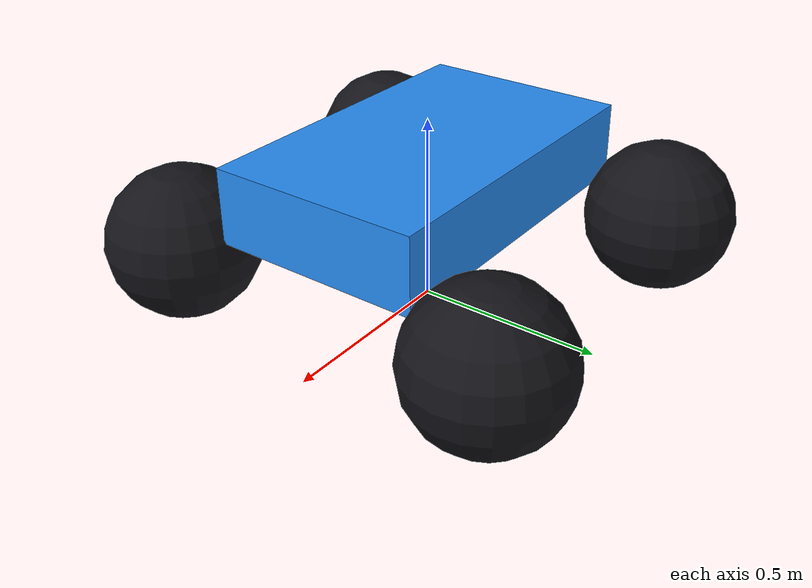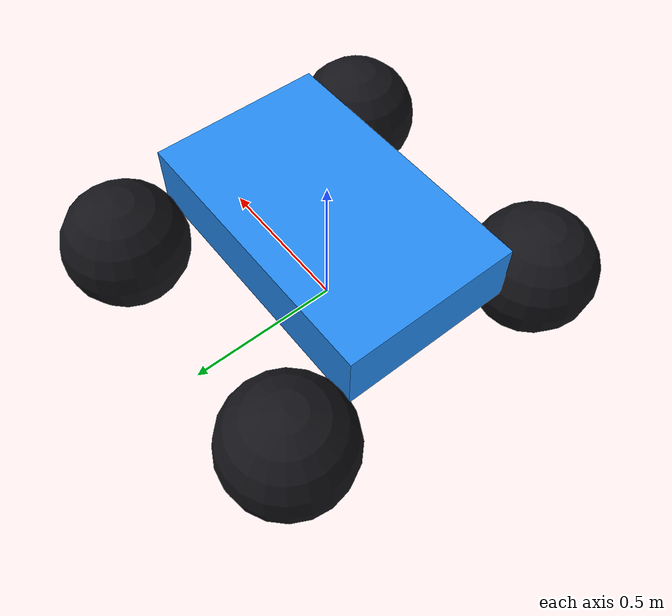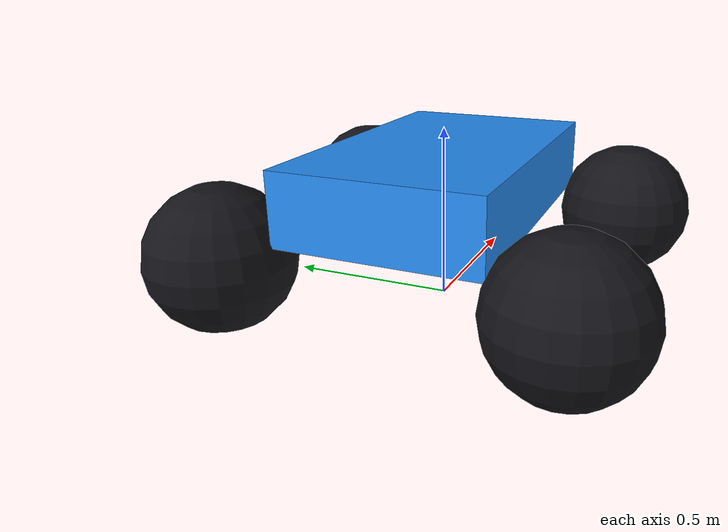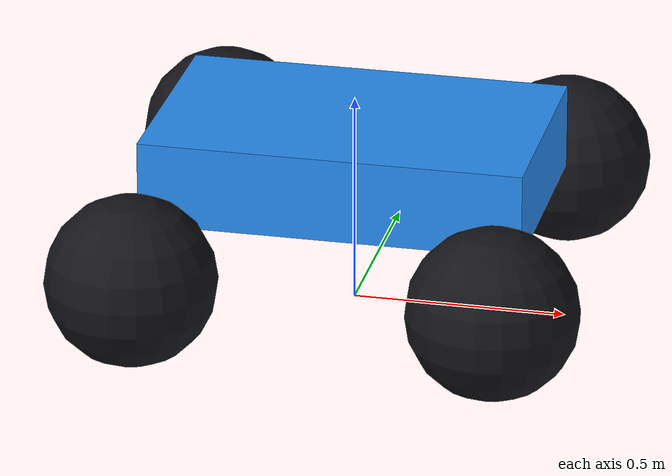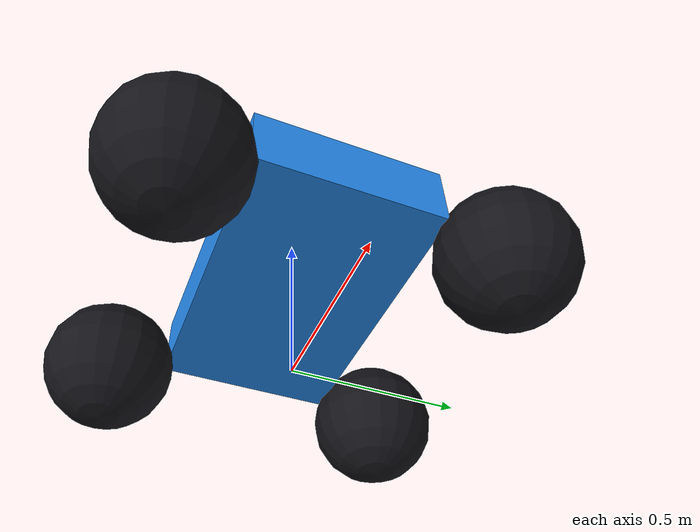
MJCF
<mujoco model="diffbot_race_v3">
  <!--
    Race chassis v3 (demo_race only): freejoint + contact wheels + Ackermann.
    Q/E → front steer angle; W/S → rear-wheel drive torque.
    Godot Car Kit remains viewer-only.
  -->
  <option timestep="0.002" integrator="implicitfast" gravity="0 0 -9.81"
          cone="elliptic" impratio="3"/>

  <default>
    <geom contype="1" conaffinity="1" friction="1.5 0.01 0.001"
          condim="3" solref="0.004 1" solimp="0.9 0.95 0.001"/>
    <joint damping="0.05" armature="0.02"/>
    <default class="wheel">
      <geom type="sphere" size="0.2" friction="1.5 0.01 0.001"
            condim="3" rgba="0.08 0.08 0.1 1"/>
      <joint type="hinge" axis="0 1 0" damping="0.08" armature="0.02"/>
    </default>
    <default class="susp">
      <joint type="slide" axis="0 0 1" range="-0.035 0.015"
             stiffness="12000" damping="200" armature="0.001"/>
    </default>
    <default class="steer">
      <joint type="hinge" axis="0 0 1" range="-0.55 0.55"
             damping="1.5" armature="0.01" limited="true"/>
    </default>
  </default>

  <worldbody>
    <body name="chassis" pos="0 0 0.2">
      <freejoint name="root"/>
      <inertial pos="-0.08 0 0.04" mass="32" diaginertia="0.6 1.2 1.3"/>
      <geom name="chassis_box" type="box" size="0.45 0.28 0.1" pos="0 0 0.16"
            contype="0" conaffinity="0"
            rgba="0.15 0.55 0.95 1"/>

      <!-- Front: susp → steer (yaw) → wheel roll -->
      <body name="susp_fl" pos="0.42 0.46 0">
        <inertial pos="0 0 0" mass="0.35" diaginertia="0.001 0.001 0.001"/>
        <joint name="susp_fl" class="susp"/>
        <body name="knuckle_fl" pos="0 0 0">
          <inertial pos="0 0 0" mass="0.25" diaginertia="0.001 0.001 0.001"/>
          <joint name="steer_fl" class="steer"/>
          <body name="wheel_fl" pos="0 0 0">
            <joint name="wheel_fl" class="wheel"/>
            <geom name="wheel_fl_geom" class="wheel" mass="1.1"/>
          </body>
        </body>
      </body>
      <body name="susp_fr" pos="0.42 -0.46 0">
        <inertial pos="0 0 0" mass="0.35" diaginertia="0.001 0.001 0.001"/>
        <joint name="susp_fr" class="susp"/>
        <body name="knuckle_fr" pos="0 0 0">
          <inertial pos="0 0 0" mass="0.25" diaginertia="0.001 0.001 0.001"/>
          <joint name="steer_fr" class="steer"/>
          <body name="wheel_fr" pos="0 0 0">
            <joint name="wheel_fr" class="wheel"/>
            <geom name="wheel_fr_geom" class="wheel" mass="1.1"/>
          </body>
        </body>
      </body>

      <!-- Rear: susp → driven wheel (no steer) -->
      <body name="susp_rl" pos="-0.42 0.46 0">
        <inertial pos="0 0 0" mass="0.35" diaginertia="0.001 0.001 0.001"/>
        <joint name="susp_rl" class="susp"/>
        <body name="wheel_rl" pos="0 0 0">
          <joint name="wheel_rl" class="wheel"/>
          <geom name="wheel_rl_geom" class="wheel" mass="1.2"/>
        </body>
      </body>
      <body name="susp_rr" pos="-0.42 -0.46 0">
        <inertial pos="0 0 0" mass="0.35" diaginertia="0.001 0.001 0.001"/>
        <joint name="susp_rr" class="susp"/>
        <body name="wheel_rr" pos="0 0 0">
          <joint name="wheel_rr" class="wheel"/>
          <geom name="wheel_rr_geom" class="wheel" mass="1.2"/>
        </body>
      </body>
    </body>
  </worldbody>

  <actuator>
    <!-- Front steer angle (rad); Gateway maps yaw_rate [-1,1] → ctrl. -->
    <position name="steer_fl" joint="steer_fl" kp="280" kv="8"
              ctrlrange="-0.55 0.55" forcerange="-120 120"/>
    <position name="steer_fr" joint="steer_fr" kp="280" kv="8"
              ctrlrange="-0.55 0.55" forcerange="-120 120"/>
    <!-- RWD torque; Gateway maps vx [-1,1] → ctrl. -->
    <motor name="wheel_rl" joint="wheel_rl" gear="26" ctrlrange="-1 1"/>
    <motor name="wheel_rr" joint="wheel_rr" gear="26" ctrlrange="-1 1"/>
  </actuator>
</mujoco>
